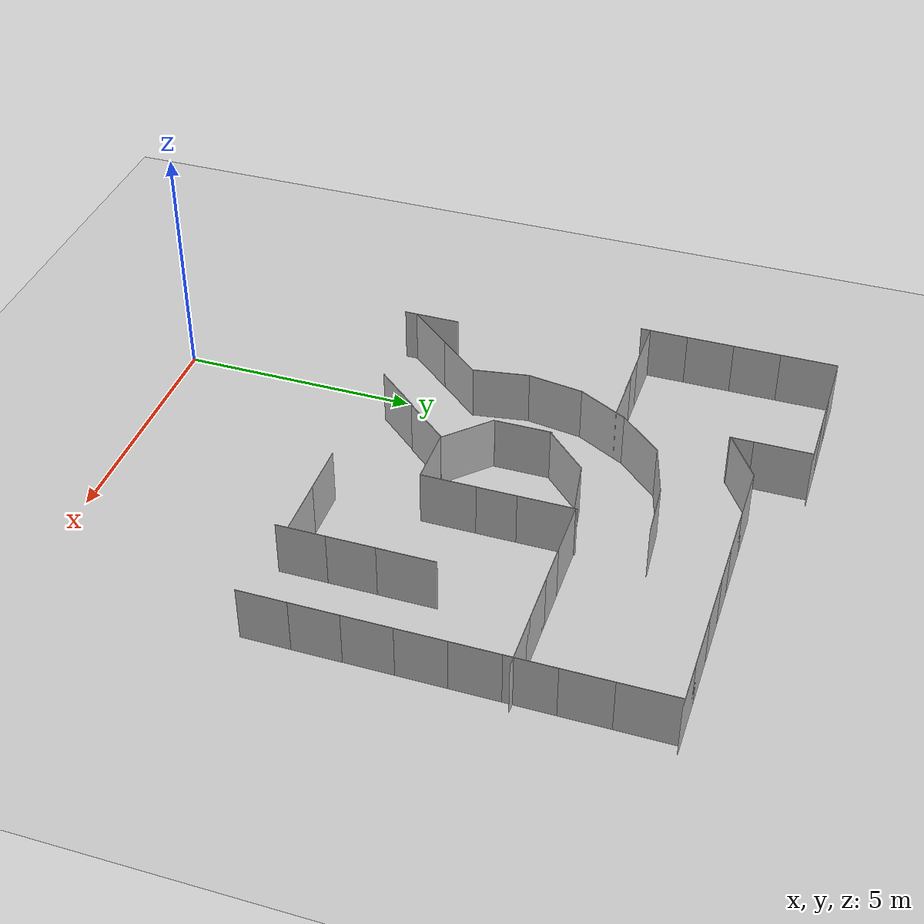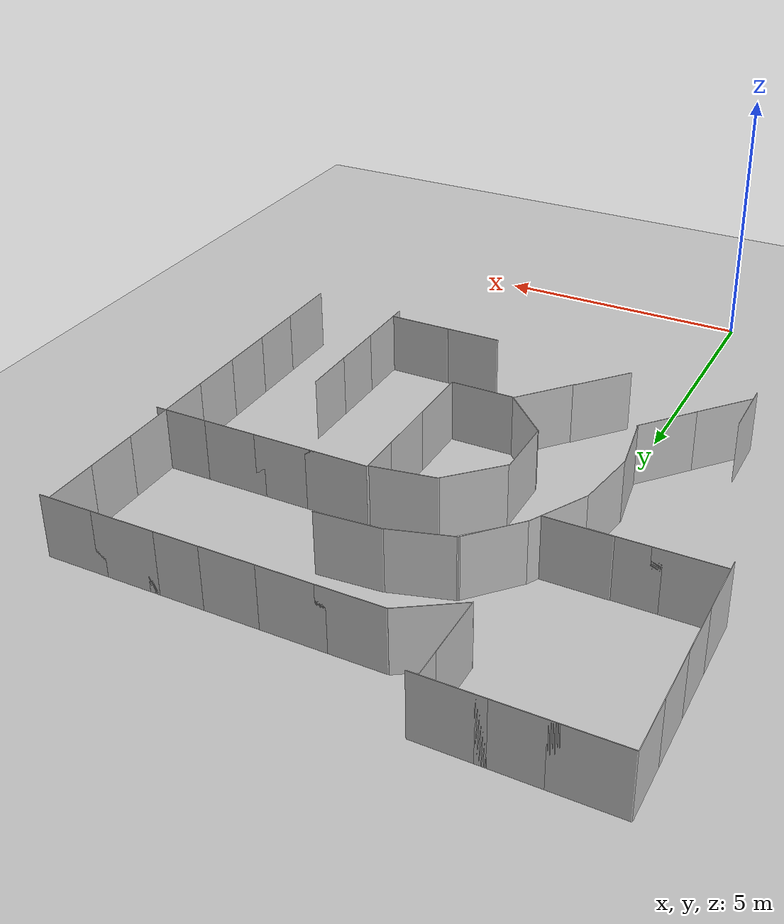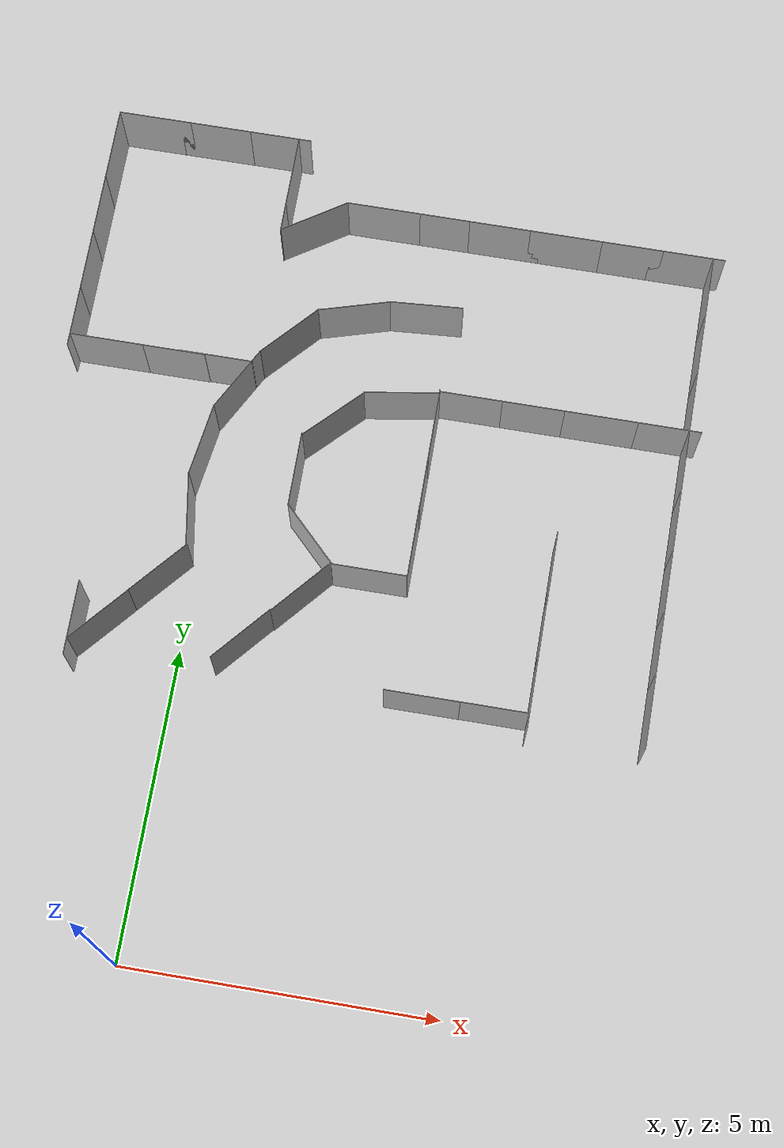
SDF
<sdf version="1.6">
 <world name="default">
  <model name="ground_plane">
   <static>1</static>
   <link name="link">
    <collision name="collision">
     <geometry><plane><normal>0 0 1</normal><size>100 100</size></plane></geometry>
     <surface>
      <contact><collide_bitmask>65535</collide_bitmask></contact>
      <friction><ode><mu>100</mu><mu2>50</mu2></ode></friction>
     </surface>
    </collision>
    <visual name="visual">
     <cast_shadows>0</cast_shadows>
     <geometry><plane><normal>0 0 1</normal><size>100 100</size></plane></geometry>
     <material>
      <script><uri>file://media/materials/scripts/gazebo.material</uri><name>Gazebo/Grey</name></script>
     </material>
    </visual>
   </link>
  </model>
  <model name="nist_maze_wall_120_clone_0_clone_8_clone_clone_0">
   <static>1</static>
   <link name="nist_maze_wall_120_link">
    <collision name="collision">
     <geometry>
      <mesh><uri>model://nist_maze_wall_120/meshes/nist_maze_wall_120.dae</uri><scale>1 1 1</scale></mesh>
     </geometry>
    </collision>
    <visual name="visual">
     <geometry>
      <mesh><uri>model://nist_maze_wall_120/meshes/nist_maze_wall_120.dae</uri><scale>1 1 1</scale></mesh>
     </geometry>
    </visual>
   </link>
   <pose>6.18807 6 0 0 -0 1.5708</pose>
  </model>
  <model name="nist_maze_wall_120_clone_0_clone_8_clone_clone_1">
   <static>1</static>
   <link name="nist_maze_wall_120_link">
    <collision name="collision">
     <geometry>
      <mesh><uri>model://nist_maze_wall_120/meshes/nist_maze_wall_120.dae</uri><scale>1 1 1</scale></mesh>
     </geometry>
    </collision>
    <visual name="visual">
     <geometry>
      <mesh><uri>model://nist_maze_wall_120/meshes/nist_maze_wall_120.dae</uri><scale>1 1 1</scale></mesh>
     </geometry>
    </visual>
   </link>
   <pose>6.18772 5 0 0 -0 1.5708</pose>
  </model>
  <model name="nist_maze_wall_120_clone_4">
   <static>1</static>
   <link name="nist_maze_wall_120_link">
    <collision name="collision">
     <geometry>
      <mesh><uri>model://nist_maze_wall_120/meshes/nist_maze_wall_120.dae</uri><scale>1 1 1</scale></mesh>
     </geometry>
    </collision>
    <visual name="visual">
     <geometry>
      <mesh><uri>model://nist_maze_wall_120/meshes/nist_maze_wall_120.dae</uri><scale>1 1 1</scale></mesh>
     </geometry>
    </visual>
   </link>
   <pose>4.98289 4.06377 0 0 -0 0</pose>
  </model>
  <model name="nist_maze_wall_120_clone_7">
   <static>1</static>
   <link name="nist_maze_wall_120_link">
    <collision name="collision">
     <geometry>
      <mesh><uri>model://nist_maze_wall_120/meshes/nist_maze_wall_120.dae</uri><scale>1 1 1</scale></mesh>
     </geometry>
    </collision>
    <visual name="visual">
     <geometry>
      <mesh><uri>model://nist_maze_wall_120/meshes/nist_maze_wall_120.dae</uri><scale>1 1 1</scale></mesh>
     </geometry>
    </visual>
   </link>
   <pose>3.9274 4.06134 0 0 -0 0</pose>
  </model>
  <model name="nist_maze_wall_120_clone_0_clone_8_clone_clone_5_clone">
   <static>1</static>
   <link name="nist_maze_wall_120_link">
    <collision name="collision">
     <geometry>
      <mesh><uri>model://nist_maze_wall_120/meshes/nist_maze_wall_120.dae</uri><scale>1 1 1</scale></mesh>
     </geometry>
    </collision>
    <visual name="visual">
     <geometry>
      <mesh><uri>model://nist_maze_wall_120/meshes/nist_maze_wall_120.dae</uri><scale>1 1 1</scale></mesh>
     </geometry>
    </visual>
   </link>
   <pose>8 5 0 0 -0 1.5708</pose>
  </model>
  <model name="nist_maze_wall_120_clone_0_clone_8_clone_clone_5_clone_0">
   <static>1</static>
   <link name="nist_maze_wall_120_link">
    <collision name="collision">
     <geometry>
      <mesh><uri>model://nist_maze_wall_120/meshes/nist_maze_wall_120.dae</uri><scale>1 1 1</scale></mesh>
     </geometry>
    </collision>
    <visual name="visual">
     <geometry>
      <mesh><uri>model://nist_maze_wall_120/meshes/nist_maze_wall_120.dae</uri><scale>1 1 1</scale></mesh>
     </geometry>
    </visual>
   </link>
   <pose>8 6 0 0 -0 1.5708</pose>
  </model>
  <model name="nist_maze_wall_120_clone_0_clone_8_clone_clone_5_clone_1">
   <static>1</static>
   <link name="nist_maze_wall_120_link">
    <collision name="collision">
     <geometry>
      <mesh><uri>model://nist_maze_wall_120/meshes/nist_maze_wall_120.dae</uri><scale>1 1 1</scale></mesh>
     </geometry>
    </collision>
    <visual name="visual">
     <geometry>
      <mesh><uri>model://nist_maze_wall_120/meshes/nist_maze_wall_120.dae</uri><scale>1 1 1</scale></mesh>
     </geometry>
    </visual>
   </link>
   <pose>8 7 0 0 -0 1.5708</pose>
  </model>
  <model name="nist_maze_wall_120_clone_0_clone_8_clone_clone_5_clone_2">
   <static>1</static>
   <link name="nist_maze_wall_120_link">
    <collision name="collision">
     <geometry>
      <mesh><uri>model://nist_maze_wall_120/meshes/nist_maze_wall_120.dae</uri><scale>1 1 1</scale></mesh>
     </geometry>
    </collision>
    <visual name="visual">
     <geometry>
      <mesh><uri>model://nist_maze_wall_120/meshes/nist_maze_wall_120.dae</uri><scale>1 1 1</scale></mesh>
     </geometry>
    </visual>
   </link>
   <pose>8 8 0 0 -0 1.5708</pose>
  </model>
  <model name="nist_maze_wall_120_clone_0_clone_8_clone_clone_5_clone_3">
   <static>1</static>
   <link name="nist_maze_wall_120_link">
    <collision name="collision">
     <geometry>
      <mesh><uri>model://nist_maze_wall_120/meshes/nist_maze_wall_120.dae</uri><scale>1 1 1</scale></mesh>
     </geometry>
    </collision>
    <visual name="visual">
     <geometry>
      <mesh><uri>model://nist_maze_wall_120/meshes/nist_maze_wall_120.dae</uri><scale>1 1 1</scale></mesh>
     </geometry>
    </visual>
   </link>
   <pose>8 9 0 0 -0 1.5708</pose>
  </model>
  <model name="nist_maze_wall_120_clone_0_clone_8_clone_clone_5_clone_5">
   <static>1</static>
   <link name="nist_maze_wall_120_link">
    <collision name="collision">
     <geometry>
      <mesh><uri>model://nist_maze_wall_120/meshes/nist_maze_wall_120.dae</uri><scale>1 1 1</scale></mesh>
     </geometry>
    </collision>
    <visual name="visual">
     <geometry>
      <mesh><uri>model://nist_maze_wall_120/meshes/nist_maze_wall_120.dae</uri><scale>1 1 1</scale></mesh>
     </geometry>
    </visual>
   </link>
   <pose>6.19194 7 0 0 -0 1.5708</pose>
  </model>
  <model name="nist_maze_wall_120_clone_7_clone">
   <static>1</static>
   <link name="nist_maze_wall_120_link">
    <collision name="collision">
     <geometry>
      <mesh><uri>model://nist_maze_wall_120/meshes/nist_maze_wall_120.dae</uri><scale>1 1 1</scale></mesh>
     </geometry>
    </collision>
    <visual name="visual">
     <geometry>
      <mesh><uri>model://nist_maze_wall_120/meshes/nist_maze_wall_120.dae</uri><scale>1 1 1</scale></mesh>
     </geometry>
    </visual>
   </link>
   <pose>7 9 0 0 -0 0</pose>
  </model>
  <model name="nist_maze_wall_120_clone_7_clone_0">
   <static>1</static>
   <link name="nist_maze_wall_120_link">
    <collision name="collision">
     <geometry>
      <mesh><uri>model://nist_maze_wall_120/meshes/nist_maze_wall_120.dae</uri><scale>1 1 1</scale></mesh>
     </geometry>
    </collision>
    <visual name="visual">
     <geometry>
      <mesh><uri>model://nist_maze_wall_120/meshes/nist_maze_wall_120.dae</uri><scale>1 1 1</scale></mesh>
     </geometry>
    </visual>
   </link>
   <pose>6 9 0 0 -0 0</pose>
  </model>
  <model name="nist_maze_wall_120_clone_7_clone_1">
   <static>1</static>
   <link name="nist_maze_wall_120_link">
    <collision name="collision">
     <geometry>
      <mesh><uri>model://nist_maze_wall_120/meshes/nist_maze_wall_120.dae</uri><scale>1 1 1</scale></mesh>
     </geometry>
    </collision>
    <visual name="visual">
     <geometry>
      <mesh><uri>model://nist_maze_wall_120/meshes/nist_maze_wall_120.dae</uri><scale>1 1 1</scale></mesh>
     </geometry>
    </visual>
   </link>
   <pose>5 9 0 0 -0 0</pose>
  </model>
  <model name="nist_maze_wall_120_clone_7_clone_2">
   <static>1</static>
   <link name="nist_maze_wall_120_link">
    <collision name="collision">
     <geometry>
      <mesh><uri>model://nist_maze_wall_120/meshes/nist_maze_wall_120.dae</uri><scale>1 1 1</scale></mesh>
     </geometry>
    </collision>
    <visual name="visual">
     <geometry>
      <mesh><uri>model://nist_maze_wall_120/meshes/nist_maze_wall_120.dae</uri><scale>1 1 1</scale></mesh>
     </geometry>
    </visual>
   </link>
   <pose>4 9 0 0 -0 0</pose>
  </model>
  <model name="nist_maze_wall_120_clone_0_clone_8_clone_clone_5_clone_6_clone">
   <static>1</static>
   <link name="nist_maze_wall_120_link">
    <collision name="collision">
     <geometry>
      <mesh><uri>model://nist_maze_wall_120/meshes/nist_maze_wall_120.dae</uri><scale>1 1 1</scale></mesh>
     </geometry>
    </collision>
    <visual name="visual">
     <geometry>
      <mesh><uri>model://nist_maze_wall_120/meshes/nist_maze_wall_120.dae</uri><scale>1 1 1</scale></mesh>
     </geometry>
    </visual>
   </link>
   <pose>3.99717 7.08657 0 0 -0 1.5708</pose>
  </model>
  <model name="nist_maze_wall_120_clone_0_clone_8_clone_clone_5_clone_6_clone_0">
   <static>1</static>
   <link name="nist_maze_wall_120_link">
    <collision name="collision">
     <geometry>
      <mesh><uri>model://nist_maze_wall_120/meshes/nist_maze_wall_120.dae</uri><scale>1 1 1</scale></mesh>
     </geometry>
    </collision>
    <visual name="visual">
     <geometry>
      <mesh><uri>model://nist_maze_wall_120/meshes/nist_maze_wall_120.dae</uri><scale>1 1 1</scale></mesh>
     </geometry>
    </visual>
   </link>
   <pose>3.99994 9.03747 0 0 -0 1.5708</pose>
  </model>
  <model name="nist_maze_wall_120_clone_0_clone_8_clone_clone_5_clone_6_clone_1">
   <static>1</static>
   <link name="nist_maze_wall_120_link">
    <collision name="collision">
     <geometry>
      <mesh><uri>model://nist_maze_wall_120/meshes/nist_maze_wall_120.dae</uri><scale>1 1 1</scale></mesh>
     </geometry>
    </collision>
    <visual name="visual">
     <geometry>
      <mesh><uri>model://nist_maze_wall_120/meshes/nist_maze_wall_120.dae</uri><scale>1 1 1</scale></mesh>
     </geometry>
    </visual>
   </link>
   <pose>3.99994 8.2248 0 0 -0 1.5708</pose>
  </model>
  <model name="nist_maze_wall_120_clone_0_clone_8_clone_clone_5_clone_6_clone_4">
   <static>1</static>
   <link name="nist_maze_wall_120_link">
    <collision name="collision">
     <geometry>
      <mesh><uri>model://nist_maze_wall_120/meshes/nist_maze_wall_120.dae</uri><scale>1 1 1</scale></mesh>
     </geometry>
    </collision>
    <visual name="visual">
     <geometry>
      <mesh><uri>model://nist_maze_wall_120/meshes/nist_maze_wall_120.dae</uri><scale>1 1 1</scale></mesh>
     </geometry>
    </visual>
   </link>
   <pose>-1 5 0 0 -0 1.5708</pose>
  </model>
  <model name="nist_maze_wall_120_clone_3_clone">
   <static>1</static>
   <link name="nist_maze_wall_120_link">
    <collision name="collision">
     <geometry>
      <mesh><uri>model://nist_maze_wall_120/meshes/nist_maze_wall_120.dae</uri><scale>1 1 1</scale></mesh>
     </geometry>
    </collision>
    <visual name="visual">
     <geometry>
      <mesh><uri>model://nist_maze_wall_120/meshes/nist_maze_wall_120.dae</uri><scale>1 1 1</scale></mesh>
     </geometry>
    </visual>
   </link>
   <pose>2.79461 5.90045 0 0 -0 0</pose>
  </model>
  <model name="nist_maze_wall_120_clone_0_clone_9_clone_2_clone">
   <static>1</static>
   <link name="nist_maze_wall_120_link">
    <collision name="collision">
     <geometry>
      <mesh><uri>model://nist_maze_wall_120/meshes/nist_maze_wall_120.dae</uri><scale>1 1 1</scale></mesh>
     </geometry>
    </collision>
    <visual name="visual">
     <geometry>
      <mesh><uri>model://nist_maze_wall_120/meshes/nist_maze_wall_120.dae</uri><scale>1 1 1</scale></mesh>
     </geometry>
    </visual>
   </link>
   <pose>1.35485 6.50778 0 0 0 -0.785398</pose>
  </model>
  <model name="nist_maze_wall_120_clone_5_clone_0">
   <static>1</static>
   <link name="nist_maze_wall_120_link">
    <collision name="collision">
     <geometry>
      <mesh><uri>model://nist_maze_wall_120/meshes/nist_maze_wall_120.dae</uri><scale>1 1 1</scale></mesh>
     </geometry>
    </collision>
    <visual name="visual">
     <geometry>
      <mesh><uri>model://nist_maze_wall_120/meshes/nist_maze_wall_120.dae</uri><scale>1 1 1</scale></mesh>
     </geometry>
    </visual>
   </link>
   <pose>0.414682 7.11795 0 0 -0 1.72865</pose>
  </model>
  <model name="nist_maze_wall_120_clone_0_clone_8_clone_clone_5_clone_6_clone_3_clone_0">
   <static>1</static>
   <link name="nist_maze_wall_120_link">
    <collision name="collision">
     <geometry>
      <mesh><uri>model://nist_maze_wall_120/meshes/nist_maze_wall_120.dae</uri><scale>1 1 1</scale></mesh>
     </geometry>
    </collision>
    <visual name="visual">
     <geometry>
      <mesh><uri>model://nist_maze_wall_120/meshes/nist_maze_wall_120.dae</uri><scale>1 1 1</scale></mesh>
     </geometry>
    </visual>
   </link>
   <pose>1.96489 7.96218 0 0 -0 1.5708</pose>
  </model>
  <model name="nist_maze_wall_120_clone_0_clone_8_clone_clone_5_clone_6_clone_3_clone_1">
   <static>1</static>
   <link name="nist_maze_wall_120_link">
    <collision name="collision">
     <geometry>
      <mesh><uri>model://nist_maze_wall_120/meshes/nist_maze_wall_120.dae</uri><scale>1 1 1</scale></mesh>
     </geometry>
    </collision>
    <visual name="visual">
     <geometry>
      <mesh><uri>model://nist_maze_wall_120/meshes/nist_maze_wall_120.dae</uri><scale>1 1 1</scale></mesh>
     </geometry>
    </visual>
   </link>
   <pose>2.22415 8.52915 0 0 -0 0.791675</pose>
  </model>
  <model name="nist_maze_wall_120_clone_0_clone_8_clone_clone_5_clone_6_clone_3_clone_2">
   <static>1</static>
   <link name="nist_maze_wall_120_link">
    <collision name="collision">
     <geometry>
      <mesh><uri>model://nist_maze_wall_120/meshes/nist_maze_wall_120.dae</uri><scale>1 1 1</scale></mesh>
     </geometry>
    </collision>
    <visual name="visual">
     <geometry>
      <mesh><uri>model://nist_maze_wall_120/meshes/nist_maze_wall_120.dae</uri><scale>1 1 1</scale></mesh>
     </geometry>
    </visual>
   </link>
   <pose>2.70735 10.0722 0 0 -0 -2.98341</pose>
  </model>
  <model name="nist_maze_wall_120_clone_0_clone_8_clone_clone_5_clone_6_clone_3_clone_3">
   <static>1</static>
   <link name="nist_maze_wall_120_link">
    <collision name="collision">
     <geometry>
      <mesh><uri>model://nist_maze_wall_120/meshes/nist_maze_wall_120.dae</uri><scale>1 1 1</scale></mesh>
     </geometry>
    </collision>
    <visual name="visual">
     <geometry>
      <mesh><uri>model://nist_maze_wall_120/meshes/nist_maze_wall_120.dae</uri><scale>1 1 1</scale></mesh>
     </geometry>
    </visual>
   </link>
   <pose>0.414432 8.10191 0 0 -0 1.42278</pose>
  </model>
  <model name="nist_maze_wall_120_clone_0_clone_8_clone_clone_5_clone_6_clone_3_clone_4">
   <static>1</static>
   <link name="nist_maze_wall_120_link">
    <collision name="collision">
     <geometry>
      <mesh><uri>model://nist_maze_wall_120/meshes/nist_maze_wall_120.dae</uri><scale>1 1 1</scale></mesh>
     </geometry>
    </collision>
    <visual name="visual">
     <geometry>
      <mesh><uri>model://nist_maze_wall_120/meshes/nist_maze_wall_120.dae</uri><scale>1 1 1</scale></mesh>
     </geometry>
    </visual>
   </link>
   <pose>-2 10 0 0 -0 1.5708</pose>
  </model>
  <model name="nist_maze_wall_120_clone_0_clone_8_clone_clone_5_clone_6_clone_3_clone_5">
   <static>1</static>
   <link name="nist_maze_wall_120_link">
    <collision name="collision">
     <geometry>
      <mesh><uri>model://nist_maze_wall_120/meshes/nist_maze_wall_120.dae</uri><scale>1 1 1</scale></mesh>
     </geometry>
    </collision>
    <visual name="visual">
     <geometry>
      <mesh><uri>model://nist_maze_wall_120/meshes/nist_maze_wall_120.dae</uri><scale>1 1 1</scale></mesh>
     </geometry>
    </visual>
   </link>
   <pose>0.418516 10.6418 0 0 -0 -2.31183</pose>
  </model>
  <model name="nist_maze_wall_120_clone_7_clone_2_clone">
   <static>1</static>
   <link name="nist_maze_wall_120_link">
    <collision name="collision">
     <geometry>
      <mesh><uri>model://nist_maze_wall_120/meshes/nist_maze_wall_120.dae</uri><scale>1 1 1</scale></mesh>
     </geometry>
    </collision>
    <visual name="visual">
     <geometry>
      <mesh><uri>model://nist_maze_wall_120/meshes/nist_maze_wall_120.dae</uri><scale>1 1 1</scale></mesh>
     </geometry>
    </visual>
   </link>
   <pose>2.99049 10.4336 0 0 -0 0.070212</pose>
  </model>
  <model name="nist_maze_wall_120_clone_0_clone_8_clone_clone_5_clone_6_clone_3_clone_2_clone">
   <static>1</static>
   <link name="nist_maze_wall_120_link">
    <collision name="collision">
     <geometry>
      <mesh><uri>model://nist_maze_wall_120/meshes/nist_maze_wall_120.dae</uri><scale>1 1 1</scale></mesh>
     </geometry>
    </collision>
    <visual name="visual">
     <geometry>
      <mesh><uri>model://nist_maze_wall_120/meshes/nist_maze_wall_120.dae</uri><scale>1 1 1</scale></mesh>
     </geometry>
    </visual>
   </link>
   <pose>1.63321 11.3988 0 0 -0 -2.85793</pose>
  </model>
  <model name="nist_maze_wall_120_clone_0_clone_8_clone_clone_5_clone_6_clone_3_clone_1_clone">
   <static>1</static>
   <link name="nist_maze_wall_120_link">
    <collision name="collision">
     <geometry>
      <mesh><uri>model://nist_maze_wall_120/meshes/nist_maze_wall_120.dae</uri><scale>1 1 1</scale></mesh>
     </geometry>
    </collision>
    <visual name="visual">
     <geometry>
      <mesh><uri>model://nist_maze_wall_120/meshes/nist_maze_wall_120.dae</uri><scale>1 1 1</scale></mesh>
     </geometry>
    </visual>
   </link>
   <pose>0.717398 9.00788 0 0 -0 1.07738</pose>
  </model>
  <model name="nist_maze_wall_120_clone_7_clone_0_clone">
   <static>1</static>
   <link name="nist_maze_wall_120_link">
    <collision name="collision">
     <geometry>
      <mesh><uri>model://nist_maze_wall_120/meshes/nist_maze_wall_120.dae</uri><scale>1 1 1</scale></mesh>
     </geometry>
    </collision>
    <visual name="visual">
     <geometry>
      <mesh><uri>model://nist_maze_wall_120/meshes/nist_maze_wall_120.dae</uri><scale>1 1 1</scale></mesh>
     </geometry>
    </visual>
   </link>
   <pose>-0.229042 9.00827 0 0 -0 0</pose>
  </model>
  <model name="nist_maze_wall_120_clone_7_clone_0_clone_clone">
   <static>1</static>
   <link name="nist_maze_wall_120_link">
    <collision name="collision">
     <geometry>
      <mesh><uri>model://nist_maze_wall_120/meshes/nist_maze_wall_120.dae</uri><scale>1 1 1</scale></mesh>
     </geometry>
    </collision>
    <visual name="visual">
     <geometry>
      <mesh><uri>model://nist_maze_wall_120/meshes/nist_maze_wall_120.dae</uri><scale>1 1 1</scale></mesh>
     </geometry>
    </visual>
   </link>
   <pose>-1 9 0 0 -0 0</pose>
  </model>
  <model name="nist_maze_wall_120_clone_0_clone_8_clone_clone_5_clone_6_clone_3_clone_4_clone">
   <static>1</static>
   <link name="nist_maze_wall_120_link">
    <collision name="collision">
     <geometry>
      <mesh><uri>model://nist_maze_wall_120/meshes/nist_maze_wall_120.dae</uri><scale>1 1 1</scale></mesh>
     </geometry>
    </collision>
    <visual name="visual">
     <geometry>
      <mesh><uri>model://nist_maze_wall_120/meshes/nist_maze_wall_120.dae</uri><scale>1 1 1</scale></mesh>
     </geometry>
    </visual>
   </link>
   <pose>-2 11 0 0 -0 1.5708</pose>
  </model>
  <model name="nist_maze_wall_120_clone_0_clone_8_clone_clone_5_clone_6_clone_3_clone_4_clone_0">
   <static>1</static>
   <link name="nist_maze_wall_120_link">
    <collision name="collision">
     <geometry>
      <mesh><uri>model://nist_maze_wall_120/meshes/nist_maze_wall_120.dae</uri><scale>1 1 1</scale></mesh>
     </geometry>
    </collision>
    <visual name="visual">
     <geometry>
      <mesh><uri>model://nist_maze_wall_120/meshes/nist_maze_wall_120.dae</uri><scale>1 1 1</scale></mesh>
     </geometry>
    </visual>
   </link>
   <pose>-2 12 0 0 -0 1.5708</pose>
  </model>
  <model name="nist_maze_wall_120_clone_0_clone_8_clone_clone_5_clone_6_clone_3_clone_4_clone_1">
   <static>1</static>
   <link name="nist_maze_wall_120_link">
    <collision name="collision">
     <geometry>
      <mesh><uri>model://nist_maze_wall_120/meshes/nist_maze_wall_120.dae</uri><scale>1 1 1</scale></mesh>
     </geometry>
    </collision>
    <visual name="visual">
     <geometry>
      <mesh><uri>model://nist_maze_wall_120/meshes/nist_maze_wall_120.dae</uri><scale>1 1 1</scale></mesh>
     </geometry>
    </visual>
   </link>
   <pose>-2 13 0 0 -0 1.5708</pose>
  </model>
  <model name="nist_maze_wall_120_clone_0_clone_8_clone_clone_5_clone_6_clone_3_clone_4_clone_2">
   <static>1</static>
   <link name="nist_maze_wall_120_link">
    <collision name="collision">
     <geometry>
      <mesh><uri>model://nist_maze_wall_120/meshes/nist_maze_wall_120.dae</uri><scale>1 1 1</scale></mesh>
     </geometry>
    </collision>
    <visual name="visual">
     <geometry>
      <mesh><uri>model://nist_maze_wall_120/meshes/nist_maze_wall_120.dae</uri><scale>1 1 1</scale></mesh>
     </geometry>
    </visual>
   </link>
   <pose>1 12.523 0 0 -0 1.5708</pose>
  </model>
  <model name="nist_maze_wall_120_clone_0_clone_8_clone_clone_5_clone_6_clone_3_clone_4_clone_3">
   <static>1</static>
   <link name="nist_maze_wall_120_link">
    <collision name="collision">
     <geometry>
      <mesh><uri>model://nist_maze_wall_120/meshes/nist_maze_wall_120.dae</uri><scale>1 1 1</scale></mesh>
     </geometry>
    </collision>
    <visual name="visual">
     <geometry>
      <mesh><uri>model://nist_maze_wall_120/meshes/nist_maze_wall_120.dae</uri><scale>1 1 1</scale></mesh>
     </geometry>
    </visual>
   </link>
   <pose>1 13 0 0 -0 1.5708</pose>
  </model>
  <model name="nist_maze_wall_120_clone_0_clone_8_clone_clone_5_clone_6_clone_3_clone_4_clone_5">
   <static>1</static>
   <link name="nist_maze_wall_120_link">
    <collision name="collision">
     <geometry>
      <mesh><uri>model://nist_maze_wall_120/meshes/nist_maze_wall_120.dae</uri><scale>1 1 1</scale></mesh>
     </geometry>
    </collision>
    <visual name="visual">
     <geometry>
      <mesh><uri>model://nist_maze_wall_120/meshes/nist_maze_wall_120.dae</uri><scale>1 1 1</scale></mesh>
     </geometry>
    </visual>
   </link>
   <pose>8 10 0 0 -0 1.5708</pose>
  </model>
  <model name="nist_maze_wall_120_clone_0_clone_8_clone_clone_5_clone_6_clone_3_clone_4_clone_6">
   <static>1</static>
   <link name="nist_maze_wall_120_link">
    <collision name="collision">
     <geometry>
      <mesh><uri>model://nist_maze_wall_120/meshes/nist_maze_wall_120.dae</uri><scale>1 1 1</scale></mesh>
     </geometry>
    </collision>
    <visual name="visual">
     <geometry>
      <mesh><uri>model://nist_maze_wall_120/meshes/nist_maze_wall_120.dae</uri><scale>1 1 1</scale></mesh>
     </geometry>
    </visual>
   </link>
   <pose>8 11 0 0 -0 1.5708</pose>
  </model>
  <model name="nist_maze_wall_120_clone_0_clone_8_clone_clone_5_clone_6_clone_3_clone_4_clone_7">
   <static>1</static>
   <link name="nist_maze_wall_120_link">
    <collision name="collision">
     <geometry>
      <mesh><uri>model://nist_maze_wall_120/meshes/nist_maze_wall_120.dae</uri><scale>1 1 1</scale></mesh>
     </geometry>
    </collision>
    <visual name="visual">
     <geometry>
      <mesh><uri>model://nist_maze_wall_120/meshes/nist_maze_wall_120.dae</uri><scale>1 1 1</scale></mesh>
     </geometry>
    </visual>
   </link>
   <pose>8 12 0 0 -0 1.5708</pose>
  </model>
  <model name="nist_maze_wall_120_clone_7_clone_0_clone_clone_0">
   <static>1</static>
   <link name="nist_maze_wall_120_link">
    <collision name="collision">
     <geometry>
      <mesh><uri>model://nist_maze_wall_120/meshes/nist_maze_wall_120.dae</uri><scale>1 1 1</scale></mesh>
     </geometry>
    </collision>
    <visual name="visual">
     <geometry>
      <mesh><uri>model://nist_maze_wall_120/meshes/nist_maze_wall_120.dae</uri><scale>1 1 1</scale></mesh>
     </geometry>
    </visual>
   </link>
   <pose>-1 13 0 0 -0 0</pose>
  </model>
  <model name="nist_maze_wall_120_clone_7_clone_0_clone_clone_1">
   <static>1</static>
   <link name="nist_maze_wall_120_link">
    <collision name="collision">
     <geometry>
      <mesh><uri>model://nist_maze_wall_120/meshes/nist_maze_wall_120.dae</uri><scale>1 1 1</scale></mesh>
     </geometry>
    </collision>
    <visual name="visual">
     <geometry>
      <mesh><uri>model://nist_maze_wall_120/meshes/nist_maze_wall_120.dae</uri><scale>1 1 1</scale></mesh>
     </geometry>
    </visual>
   </link>
   <pose>0 13 0 0 -0 0</pose>
  </model>
  <model name="nist_maze_wall_120_clone_7_clone_0_clone_clone_2">
   <static>1</static>
   <link name="nist_maze_wall_120_link">
    <collision name="collision">
     <geometry>
      <mesh><uri>model://nist_maze_wall_120/meshes/nist_maze_wall_120.dae</uri><scale>1 1 1</scale></mesh>
     </geometry>
    </collision>
    <visual name="visual">
     <geometry>
      <mesh><uri>model://nist_maze_wall_120/meshes/nist_maze_wall_120.dae</uri><scale>1 1 1</scale></mesh>
     </geometry>
    </visual>
   </link>
   <pose>-2 13 0 0 -0 0</pose>
  </model>
  <model name="nist_maze_wall_120_clone_7_clone_0_clone_clone_2_clone">
   <static>1</static>
   <link name="nist_maze_wall_120_link">
    <collision name="collision">
     <geometry>
      <mesh><uri>model://nist_maze_wall_120/meshes/nist_maze_wall_120.dae</uri><scale>1 1 1</scale></mesh>
     </geometry>
    </collision>
    <visual name="visual">
     <geometry>
      <mesh><uri>model://nist_maze_wall_120/meshes/nist_maze_wall_120.dae</uri><scale>1 1 1</scale></mesh>
     </geometry>
    </visual>
   </link>
   <pose>-2 9 0 0 -0 0</pose>
  </model>
  <model name="nist_maze_wall_120_clone_7_clone_2_clone_0">
   <static>1</static>
   <link name="nist_maze_wall_120_link">
    <collision name="collision">
     <geometry>
      <mesh><uri>model://nist_maze_wall_120/meshes/nist_maze_wall_120.dae</uri><scale>1 1 1</scale></mesh>
     </geometry>
    </collision>
    <visual name="visual">
     <geometry>
      <mesh><uri>model://nist_maze_wall_120/meshes/nist_maze_wall_120.dae</uri><scale>1 1 1</scale></mesh>
     </geometry>
    </visual>
   </link>
   <pose>5 12 0 0 -0 0</pose>
  </model>
  <model name="nist_maze_wall_120_clone_7_clone_2_clone_1">
   <static>1</static>
   <link name="nist_maze_wall_120_link">
    <collision name="collision">
     <geometry>
      <mesh><uri>model://nist_maze_wall_120/meshes/nist_maze_wall_120.dae</uri><scale>1 1 1</scale></mesh>
     </geometry>
    </collision>
    <visual name="visual">
     <geometry>
      <mesh><uri>model://nist_maze_wall_120/meshes/nist_maze_wall_120.dae</uri><scale>1 1 1</scale></mesh>
     </geometry>
    </visual>
   </link>
   <pose>3 12 0 0 -0 0</pose>
  </model>
  <model name="nist_maze_wall_120_clone_7_clone_2_clone_2">
   <static>1</static>
   <link name="nist_maze_wall_120_link">
    <collision name="collision">
     <geometry>
      <mesh><uri>model://nist_maze_wall_120/meshes/nist_maze_wall_120.dae</uri><scale>1 1 1</scale></mesh>
     </geometry>
    </collision>
    <visual name="visual">
     <geometry>
      <mesh><uri>model://nist_maze_wall_120/meshes/nist_maze_wall_120.dae</uri><scale>1 1 1</scale></mesh>
     </geometry>
    </visual>
   </link>
   <pose>2 12 0 0 -0 0</pose>
  </model>
  <model name="nist_maze_wall_120_clone_7_clone_2_clone_3">
   <static>1</static>
   <link name="nist_maze_wall_120_link">
    <collision name="collision">
     <geometry>
      <mesh><uri>model://nist_maze_wall_120/meshes/nist_maze_wall_120.dae</uri><scale>1 1 1</scale></mesh>
     </geometry>
    </collision>
    <visual name="visual">
     <geometry>
      <mesh><uri>model://nist_maze_wall_120/meshes/nist_maze_wall_120.dae</uri><scale>1 1 1</scale></mesh>
     </geometry>
    </visual>
   </link>
   <pose>4 12 0 0 -0 0</pose>
  </model>
  <model name="nist_maze_wall_120_clone_7_clone_2_clone_4">
   <static>1</static>
   <link name="nist_maze_wall_120_link">
    <collision name="collision">
     <geometry>
      <mesh><uri>model://nist_maze_wall_120/meshes/nist_maze_wall_120.dae</uri><scale>1 1 1</scale></mesh>
     </geometry>
    </collision>
    <visual name="visual">
     <geometry>
      <mesh><uri>model://nist_maze_wall_120/meshes/nist_maze_wall_120.dae</uri><scale>1 1 1</scale></mesh>
     </geometry>
    </visual>
   </link>
   <pose>6 12 0 0 -0 0</pose>
  </model>
  <model name="nist_maze_wall_120_clone_7_clone_2_clone_5">
   <static>1</static>
   <link name="nist_maze_wall_120_link">
    <collision name="collision">
     <geometry>
      <mesh><uri>model://nist_maze_wall_120/meshes/nist_maze_wall_120.dae</uri><scale>1 1 1</scale></mesh>
     </geometry>
    </collision>
    <visual name="visual">
     <geometry>
      <mesh><uri>model://nist_maze_wall_120/meshes/nist_maze_wall_120.dae</uri><scale>1 1 1</scale></mesh>
     </geometry>
    </visual>
   </link>
   <pose>7 12 0 0 -0 0</pose>
  </model>
  <model name="nist_maze_wall_120_clone_0_clone_8_clone_clone_5_clone_6_clone_3_clone_5_clone_0">
   <static>1</static>
   <link name="nist_maze_wall_120_link">
    <collision name="collision">
     <geometry>
      <mesh><uri>model://nist_maze_wall_120/meshes/nist_maze_wall_120.dae</uri><scale>1 1 1</scale></mesh>
     </geometry>
    </collision>
    <visual name="visual">
     <geometry>
      <mesh><uri>model://nist_maze_wall_120/meshes/nist_maze_wall_120.dae</uri><scale>1 1 1</scale></mesh>
     </geometry>
    </visual>
   </link>
   <pose>0.567065 12.7752 0 0 -0 -2.56201</pose>
  </model>
  <model name="nist_maze_wall_120_clone_5_clone_clone_0">
   <static>1</static>
   <link name="nist_maze_wall_120_link">
    <collision name="collision">
     <geometry>
      <mesh><uri>model://nist_maze_wall_120/meshes/nist_maze_wall_120.dae</uri><scale>1 1 1</scale></mesh>
     </geometry>
    </collision>
    <visual name="visual">
     <geometry>
      <mesh><uri>model://nist_maze_wall_120/meshes/nist_maze_wall_120.dae</uri><scale>1 1 1</scale></mesh>
     </geometry>
    </visual>
   </link>
   <pose>1.47623 4.78545 0 0 -0 0.859737</pose>
  </model>
  <model name="nist_maze_wall_120_clone_5_clone_clone_1">
   <static>1</static>
   <link name="nist_maze_wall_120_link">
    <collision name="collision">
     <geometry>
      <mesh><uri>model://nist_maze_wall_120/meshes/nist_maze_wall_120.dae</uri><scale>1 1 1</scale></mesh>
     </geometry>
    </collision>
    <visual name="visual">
     <geometry>
      <mesh><uri>model://nist_maze_wall_120/meshes/nist_maze_wall_120.dae</uri><scale>1 1 1</scale></mesh>
     </geometry>
    </visual>
   </link>
   <pose>-0.753726 4.71935 0 0 -0 0.859737</pose>
  </model>
  <model name="nist_maze_wall_120_clone_5_clone_clone_2">
   <static>1</static>
   <link name="nist_maze_wall_120_link">
    <collision name="collision">
     <geometry>
      <mesh><uri>model://nist_maze_wall_120/meshes/nist_maze_wall_120.dae</uri><scale>1 1 1</scale></mesh>
     </geometry>
    </collision>
    <visual name="visual">
     <geometry>
      <mesh><uri>model://nist_maze_wall_120/meshes/nist_maze_wall_120.dae</uri><scale>1 1 1</scale></mesh>
     </geometry>
    </visual>
   </link>
   <pose>-0.002865 5.59526 0 0 -0 0.859737</pose>
  </model>
  <model name="nist_maze_wall_120_clone_5_clone_clone">
   <static>1</static>
   <link name="nist_maze_wall_120_link">
    <collision name="collision">
     <geometry>
      <mesh><uri>model://nist_maze_wall_120/meshes/nist_maze_wall_120.dae</uri><scale>1 1 1</scale></mesh>
     </geometry>
    </collision>
    <visual name="visual">
     <geometry>
      <mesh><uri>model://nist_maze_wall_120/meshes/nist_maze_wall_120.dae</uri><scale>1 1 1</scale></mesh>
     </geometry>
    </visual>
   </link>
   <pose>2.25145 5.66516 0 0 -0 0.859737</pose>
  </model>
 </world>
</sdf>
